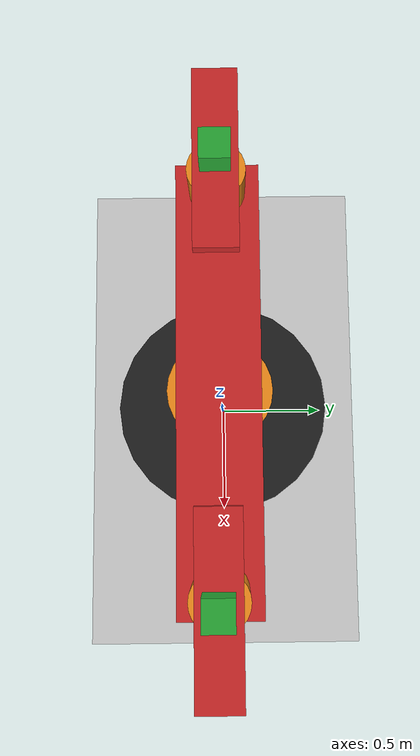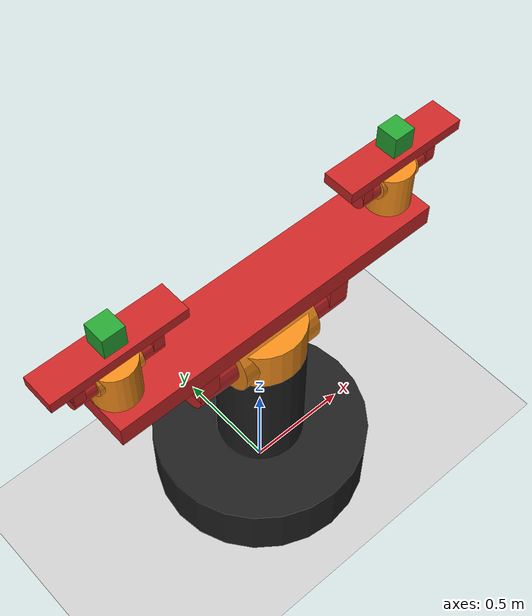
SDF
<sdf version="1.6">
 <world name="default">
  <model name="ground_plane">
   <static>1</static>
   <link name="link">
    <collision name="collision">
     <geometry><plane><normal>0 0 1</normal><size>100 100</size></plane></geometry>
     <surface>
      <contact><collide_bitmask>65535</collide_bitmask></contact>
      <friction><ode><mu>100</mu><mu2>50</mu2></ode></friction>
     </surface>
    </collision>
    <visual name="visual">
     <cast_shadows>0</cast_shadows>
     <geometry><plane><normal>0 0 1</normal><size>100 100</size></plane></geometry>
     <material>
      <script><uri>file://media/materials/scripts/gazebo.material</uri><name>Gazebo/Grey</name></script>
     </material>
    </visual>
   </link>
  </model>
  <light name="sun" type="directional">
   <pose>0 0 10 0 -0 0</pose>
   <diffuse>0.8 0.8 0.8 1</diffuse>
   <specular>0.2 0.2 0.2 1</specular>
   <attenuation>
    <range>1000</range>
    <constant>0.9</constant>
    <linear>0.01</linear>
    <quadratic>0.001</quadratic>
   </attenuation>
   <direction>-0.5 0.1 -0.9</direction>
  </light>
  <gravity>0 0 -9.8</gravity>
  <magnetic_field>6e-06 2.3e-05 -4.2e-05</magnetic_field>
  <atmosphere type="adiabatic"/>
  <physics name="default_physics" default="0" type="ode">
   <max_step_size>0.001</max_step_size>
   <real_time_factor>1</real_time_factor>
   <real_time_update_rate>1000</real_time_update_rate>
  </physics>
  <scene><ambient>0.4 0.4 0.4 1</ambient><background>0.7 0.7 0.7 1</background><shadows>1</shadows></scene>
  <spherical_coordinates>
   <surface_model>EARTH_WGS84</surface_model>
   <latitude_deg>0</latitude_deg>
   <longitude_deg>0</longitude_deg>
   <elevation>0</elevation>
   <heading_deg>0</heading_deg>
  </spherical_coordinates>
  <model name="binocular">
   <link name="link_base">
    <inertial>
     <pose>0 0 0.15 0 -0 0</pose>
     <mass>5</mass>
     <inertia><ixx>0.35</ixx><ixy>0</ixy><ixz>0</ixz><iyy>0.35</iyy><iyz>0</iyz><izz>0.625</izz></inertia>
    </inertial>
    <collision name="link_base_collision">
     <pose>0 0 0.15 0 -0 0</pose>
     <geometry><cylinder><length>0.3</length><radius>0.5</radius></cylinder></geometry>
    </collision>
    <collision name="link_base_collision_1">
     <pose>0 0 0.6 0 -0 0</pose>
     <geometry><cylinder><length>0.6</length><radius>0.2</radius></cylinder></geometry>
    </collision>
    <visual name="link_base_visual">
     <pose>0 0 0.15 0 -0 0</pose>
     <geometry><cylinder><length>0.3</length><radius>0.5</radius></cylinder></geometry>
     <material>
      <script><name>Gazebo/Black</name><uri>file://media/materials/scripts/gazebo.material</uri></script>
     </material>
    </visual>
    <visual name="link_base_visual_1">
     <pose>0 0 0.6 0 -0 0</pose>
     <geometry><cylinder><length>0.6</length><radius>0.2</radius></cylinder></geometry>
     <material>
      <script><name>Gazebo/Black</name><uri>file://media/materials/scripts/gazebo.material</uri></script>
     </material>
    </visual>
   </link>
   <joint name="fixed" type="fixed"><child>link_base</child><parent>world</parent></joint>
   <link name="link_servo0">
    <pose>0 0 0.9 0 -0 0</pose>
    <inertial>
     <pose>0 0 0.1 0 -0 0</pose>
     <mass>1</mass>
     <inertia><ixx>0.15</ixx><ixy>0</ixy><ixz>0</ixz><iyy>0.1</iyy><iyz>0</iyz><izz>0.2</izz></inertia>
    </inertial>
    <collision name="link_servo0_collision">
     <pose>0 0 0.1 0 -0 0</pose>
     <geometry><cylinder><length>0.6</length><radius>0.2</radius></cylinder></geometry>
     <surface><friction><ode><mu>0.2</mu><mu2>0.2</mu2></ode></friction></surface>
    </collision>
    <collision name="link_servo0_collision_1">
     <pose>0 0 0.1 3.14159 1.57079 3.14159</pose>
     <geometry><cylinder><length>0.4</length><radius>0.15</radius></cylinder></geometry>
     <surface><friction><ode><mu>0.2</mu><mu2>0.2</mu2></ode></friction></surface>
    </collision>
    <visual name="link_servo0_visual">
     <pose>0 0 0.1 0 -0 0</pose>
     <geometry><cylinder><length>0.2</length><radius>0.2</radius></cylinder></geometry>
     <material>
      <script><name>Gazebo/Orange</name><uri>file://media/materials/scripts/gazebo.material</uri></script>
     </material>
    </visual>
    <visual name="link_servo0_visual_1">
     <pose>0 0 0.1 3.14159 1.57079 3.14159</pose>
     <geometry><cylinder><length>0.4</length><radius>0.15</radius></cylinder></geometry>
     <material>
      <script><name>Gazebo/Orange</name><uri>file://media/materials/scripts/gazebo.material</uri></script>
     </material>
    </visual>
   </link>
   <joint name="theta1" type="revolute">
    <child>link_servo0</child>
    <parent>link_base</parent>
    <axis>
     <xyz>0 0 1</xyz>
     <limit><lower>0</lower><upper>0</upper><effort>1000</effort><velocity>0.5</velocity></limit>
     <dynamics>
      <damping>0.5</damping>
      <friction>0</friction>
      <spring_reference>0</spring_reference>
      <spring_stiffness>0</spring_stiffness>
     </dynamics>
     <use_parent_model_frame>1</use_parent_model_frame>
    </axis>
   </joint>
   <link name="link_servo1_baselineboard">
    <pose>0 0 1 -1.5708 -0 -1.5708</pose>
    <inertial>
     <mass>1.66667</mass>
     <inertia><ixx>0.1</ixx><ixy>0</ixy><ixz>0</ixz><iyy>-0.1</iyy><iyz>0</iyz><izz>0.2</izz></inertia>
    </inertial>
    <collision name="link_servo1_baselineboard_collision">
     <pose>0 0 0.3 0 -0 0</pose>
     <geometry><cylinder><length>0.2</length><radius>0.1</radius></cylinder></geometry>
     <surface><friction><ode><mu>0.2</mu><mu2>0.2</mu2></ode></friction></surface>
    </collision>
    <collision name="link_servo1_baselineboard_collision_1">
     <pose>0 0 -0.3 0 -0 0</pose>
     <geometry><cylinder><length>0.2</length><radius>0.1</radius></cylinder></geometry>
     <surface><friction><ode><mu>0.2</mu><mu2>0.2</mu2></ode></friction></surface>
    </collision>
    <collision name="link_servo1_baselineboard_collision_2">
     <pose>0 -0.1 0.35 0 -0 0</pose>
     <geometry><box><size>0.2 0.2 0.1</size></box></geometry>
     <surface><friction><ode><mu>0.2</mu><mu2>0.2</mu2></ode></friction></surface>
    </collision>
    <collision name="link_servo1_baselineboard_collision_3">
     <pose>0 -0.1 -0.35 0 -0 0</pose>
     <geometry><box><size>0.2 0.2 0.1</size></box></geometry>
     <surface><friction><ode><mu>0.2</mu><mu2>0.2</mu2></ode></friction></surface>
    </collision>
    <collision name="link_servo1_baselineboard_collision_4">
     <pose>0 -0.25 0 0 -0 0</pose>
     <geometry><box><size>0.3 0.1 1.6</size></box></geometry>
     <surface><friction><ode><mu>0.2</mu><mu2>0.2</mu2></ode></friction></surface>
    </collision>
    <visual name="link_servo1_baselineboard_visual">
     <pose>0 0 0.3 0 -0 0</pose>
     <geometry><cylinder><length>0.2</length><radius>0.1</radius></cylinder></geometry>
     <material>
      <script><name>Gazebo/Red</name><uri>file://media/materials/scripts/gazebo.material</uri></script>
     </material>
    </visual>
    <visual name="link_servo1_baselineboard_visual_1">
     <pose>0 0 -0.3 0 -0 0</pose>
     <geometry><cylinder><length>0.2</length><radius>0.1</radius></cylinder></geometry>
     <material>
      <script><name>Gazebo/Red</name><uri>file://media/materials/scripts/gazebo.material</uri></script>
     </material>
    </visual>
    <visual name="link_servo1_baselineboard_visual_2">
     <pose>0 -0.1 0.35 0 -0 0</pose>
     <geometry><box><size>0.2 0.2 0.1</size></box></geometry>
     <material>
      <script><name>Gazebo/Red</name><uri>file://media/materials/scripts/gazebo.material</uri></script>
     </material>
    </visual>
    <visual name="link_servo1_baselineboard_visual_3">
     <pose>0 -0.1 -0.35 0 -0 0</pose>
     <geometry><box><size>0.2 0.2 0.1</size></box></geometry>
     <material>
      <script><name>Gazebo/Red</name><uri>file://media/materials/scripts/gazebo.material</uri></script>
     </material>
    </visual>
    <visual name="link_servo1_baselineboard_visual_4">
     <pose>0 -0.25 0 0 -0 0</pose>
     <geometry><box><size>0.3 0.1 1.6</size></box></geometry>
     <material>
      <script><name>Gazebo/Red</name><uri>file://media/materials/scripts/gazebo.material</uri></script>
     </material>
    </visual>
   </link>
   <joint name="theta2" type="revolute">
    <child>link_servo1_baselineboard</child>
    <parent>link_servo0</parent>
    <axis>
     <xyz>1 0 0</xyz>
     <limit><lower>0</lower><upper>0</upper><effort>1000</effort><velocity>0.5</velocity></limit>
     <dynamics>
      <damping>0.5</damping>
      <friction>0</friction>
      <spring_reference>0</spring_reference>
      <spring_stiffness>0</spring_stiffness>
     </dynamics>
     <use_parent_model_frame>1</use_parent_model_frame>
    </axis>
   </joint>
   <link name="link_servo2">
    <pose>-0.7 -0 1 0 -0 1.5708</pose>
    <inertial>
     <pose>0 0 0.4 0 -0 0</pose>
     <mass>1</mass>
     <inertia><ixx>0.01</ixx><ixy>0</ixy><ixz>0</ixz><iyy>0.01</iyy><iyz>0</iyz><izz>0.01</izz></inertia>
    </inertial>
    <collision name="link_servo2_collision">
     <pose>0 0 0.4 0 -0 0</pose>
     <geometry><cylinder><length>0.2</length><radius>0.1</radius></cylinder></geometry>
     <surface><friction><ode><mu>0.2</mu><mu2>0.2</mu2></ode></friction></surface>
    </collision>
    <collision name="link_servo2_collision_1">
     <pose>0 0 0.45 1.57078 -1.57079 -3.14158</pose>
     <geometry><cylinder><length>0.2</length><radius>0.0625</radius></cylinder></geometry>
     <surface><friction><ode><mu>0.2</mu><mu2>0.2</mu2></ode></friction></surface>
    </collision>
    <visual name="link_servo2_visual">
     <pose>0 0 0.4 0 -0 0</pose>
     <geometry><cylinder><length>0.2</length><radius>0.1</radius></cylinder></geometry>
     <material>
      <script><name>Gazebo/Orange</name><uri>file://media/materials/scripts/gazebo.material</uri></script>
     </material>
    </visual>
    <visual name="link_servo2_visual_1">
     <pose>0 0 0.45 1.57078 -1.57079 -3.14158</pose>
     <geometry><cylinder><length>0.2</length><radius>0.0625</radius></cylinder></geometry>
     <material>
      <script><name>Gazebo/Orange</name><uri>file://media/materials/scripts/gazebo.material</uri></script>
     </material>
    </visual>
   </link>
   <joint name="theta3" type="revolute">
    <child>link_servo2</child>
    <parent>link_servo1_baselineboard</parent>
    <axis>
     <xyz>0 0 1</xyz>
     <limit><lower>-1e+16</lower><upper>1e+16</upper></limit>
     <dynamics>
      <damping>0.5</damping>
      <friction>0</friction>
      <spring_reference>0</spring_reference>
      <spring_stiffness>0</spring_stiffness>
     </dynamics>
     <use_parent_model_frame>1</use_parent_model_frame>
    </axis>
   </joint>
   <link name="link_servo3">
    <pose>-0.7 -0 1.45 -1.5708 -0 -1.5708</pose>
    <inertial>
     <pose>0 -4e-06 0 0 -0 0</pose>
     <mass>0.50001</mass>
     <inertia>
      <ixx>0.0100014</ixx>
      <ixy>0</ixy>
      <ixz>0</ixz>
      <iyy>-0.009999</iyy>
      <iyz>0</iyz>
      <izz>0.0200014</izz>
     </inertia>
    </inertial>
    <collision name="link_servo3_collision">
     <pose>0 0 0.15 0 -0 0</pose>
     <geometry><cylinder><length>0.1</length><radius>0.05</radius></cylinder></geometry>
     <surface><friction><ode><mu>0.2</mu><mu2>0.2</mu2></ode></friction></surface>
    </collision>
    <collision name="link_servo3_collision_1">
     <pose>0 0 -0.15 0 -0 0</pose>
     <geometry><cylinder><length>0.1</length><radius>0.05</radius></cylinder></geometry>
     <surface><friction><ode><mu>0.2</mu><mu2>0.2</mu2></ode></friction></surface>
    </collision>
    <collision name="link_servo3_collision_2">
     <pose>0 -0.05 0.175 0 -0 0</pose>
     <geometry><box><size>0.1 0.1 0.05</size></box></geometry>
     <surface><friction><ode><mu>0.2</mu><mu2>0.2</mu2></ode></friction></surface>
    </collision>
    <collision name="link_servo3_collision_3">
     <pose>0 -0.05 -0.175 0 -0 0</pose>
     <geometry><box><size>0.1 0.1 0.05</size></box></geometry>
     <surface><friction><ode><mu>0.2</mu><mu2>0.2</mu2></ode></friction></surface>
    </collision>
    <collision name="link_servo3_collision_4">
     <pose>0 -0.125 0 0 -0 0</pose>
     <geometry><box><size>0.15 0.05 0.6</size></box></geometry>
     <surface><friction><ode><mu>0.2</mu><mu2>0.2</mu2></ode></friction></surface>
    </collision>
    <collision name="link_servo3_fixed_joint_lump__left_camera_collision_5">
     <pose>0 -0.2 0 -1.5708 -0 -3.14159</pose>
     <geometry><box><size>0.1 0.1 0.1</size></box></geometry>
     <surface><friction><ode><mu>0.2</mu><mu2>0.2</mu2></ode></friction></surface>
    </collision>
    <visual name="link_servo3_visual">
     <pose>0 0 0.15 0 -0 0</pose>
     <geometry><cylinder><length>0.1</length><radius>0.05</radius></cylinder></geometry>
     <material>
      <script><name>Gazebo/Red</name><uri>file://media/materials/scripts/gazebo.material</uri></script>
     </material>
    </visual>
    <visual name="link_servo3_visual_1">
     <pose>0 0 -0.15 0 -0 0</pose>
     <geometry><cylinder><length>0.1</length><radius>0.05</radius></cylinder></geometry>
     <material>
      <script><name>Gazebo/Red</name><uri>file://media/materials/scripts/gazebo.material</uri></script>
     </material>
    </visual>
    <visual name="link_servo3_visual_2">
     <pose>0 -0.05 0.175 0 -0 0</pose>
     <geometry><box><size>0.1 0.1 0.05</size></box></geometry>
     <material>
      <script><name>Gazebo/Red</name><uri>file://media/materials/scripts/gazebo.material</uri></script>
     </material>
    </visual>
    <visual name="link_servo3_visual_3">
     <pose>0 -0.05 -0.175 0 -0 0</pose>
     <geometry><box><size>0.1 0.1 0.05</size></box></geometry>
     <material>
      <script><name>Gazebo/Red</name><uri>file://media/materials/scripts/gazebo.material</uri></script>
     </material>
    </visual>
    <visual name="link_servo3_visual_4">
     <pose>0 -0.125 0 0 -0 0</pose>
     <geometry><box><size>0.15 0.05 0.6</size></box></geometry>
     <material>
      <script><name>Gazebo/Red</name><uri>file://media/materials/scripts/gazebo.material</uri></script>
     </material>
    </visual>
    <visual name="link_servo3_fixed_joint_lump__left_camera_visual_5">
     <pose>0 -0.2 0 -1.5708 -0 -3.14159</pose>
     <geometry><box><size>0.1 0.1 0.1</size></box></geometry>
     <material>
      <script><name>Gazebo/Green</name><uri>file://media/materials/scripts/gazebo.material</uri></script>
     </material>
    </visual>
    <sensor name="cameraL" type="camera">
     <update_rate>30</update_rate>
     <camera name="leftcmr">
      <horizontal_fov>1.39626</horizontal_fov>
      <image><width>800</width><height>480</height><format>R8G8B8</format></image>
      <clip><near>0.02</near><far>300</far></clip>
      <noise><type>gaussian</type><mean>0</mean><stddev>0.007</stddev></noise>
     </camera>
     <plugin name="camera_controller" filename="libgazebo_ros_camera.so">
      <alwaysOn>true</alwaysOn>
      <updateRate>0.0</updateRate>
      <cameraName>binocular/lefteye</cameraName>
      <imageTopicName>image_raw</imageTopicName>
      <cameraInfoTopicName>camera_info</cameraInfoTopicName>
      <frameName>camera_link_optical</frameName>
      <hackBaseline>0.0</hackBaseline>
      <distortionK1>0.0</distortionK1>
      <distortionK2>0.0</distortionK2>
      <distortionK3>0.0</distortionK3>
      <distortionT1>0.0</distortionT1>
      <distortionT2>0.0</distortionT2>
      <CxPrime>0</CxPrime>
      <Cx>0.0</Cx>
      <Cy>0.0</Cy>
      <focalLength>0.0</focalLength>
      <robotNamespace>/</robotNamespace>
     </plugin>
     <pose>0 -0.2 0 -1.5708 -0 -3.14159</pose>
    </sensor>
   </link>
   <joint name="theta4" type="revolute">
    <child>link_servo3</child>
    <parent>link_servo2</parent>
    <axis>
     <xyz>1 0 0</xyz>
     <limit><lower>0</lower><upper>0</upper><effort>1000</effort><velocity>0.5</velocity></limit>
     <dynamics>
      <damping>0.5</damping>
      <friction>0</friction>
      <spring_reference>0</spring_reference>
      <spring_stiffness>0</spring_stiffness>
     </dynamics>
     <use_parent_model_frame>1</use_parent_model_frame>
    </axis>
   </joint>
   <link name="link_servo4">
    <pose>0.7 0 1 0 -0 1.5708</pose>
    <inertial>
     <pose>0 0 0.4 0 -0 0</pose>
     <mass>1</mass>
     <inertia><ixx>0.01</ixx><ixy>0</ixy><ixz>0</ixz><iyy>0.01</iyy><iyz>0</iyz><izz>0.01</izz></inertia>
    </inertial>
    <collision name="link_servo4_collision">
     <pose>0 0 0.4 0 -0 0</pose>
     <geometry><cylinder><length>0.2</length><radius>0.1</radius></cylinder></geometry>
     <surface><friction><ode><mu>0.2</mu><mu2>0.2</mu2></ode></friction></surface>
    </collision>
    <collision name="link_servo4_collision_1">
     <pose>0 0 0.45 1.57078 -1.57079 -3.14158</pose>
     <geometry><cylinder><length>0.2</length><radius>0.0625</radius></cylinder></geometry>
     <surface><friction><ode><mu>0.2</mu><mu2>0.2</mu2></ode></friction></surface>
    </collision>
    <visual name="link_servo4_visual">
     <pose>0 0 0.4 0 -0 0</pose>
     <geometry><cylinder><length>0.2</length><radius>0.1</radius></cylinder></geometry>
     <material>
      <script><name>Gazebo/Orange</name><uri>file://media/materials/scripts/gazebo.material</uri></script>
     </material>
    </visual>
    <visual name="link_servo4_visual_1">
     <pose>0 0 0.45 1.57078 -1.57079 -3.14158</pose>
     <geometry><cylinder><length>0.2</length><radius>0.0625</radius></cylinder></geometry>
     <material>
      <script><name>Gazebo/Orange</name><uri>file://media/materials/scripts/gazebo.material</uri></script>
     </material>
    </visual>
   </link>
   <joint name="theta5" type="revolute">
    <child>link_servo4</child>
    <parent>link_servo1_baselineboard</parent>
    <axis>
     <xyz>0 0 1</xyz>
     <limit><lower>-1e+16</lower><upper>1e+16</upper></limit>
     <dynamics>
      <damping>0.5</damping>
      <friction>0</friction>
      <spring_reference>0</spring_reference>
      <spring_stiffness>0</spring_stiffness>
     </dynamics>
     <use_parent_model_frame>1</use_parent_model_frame>
    </axis>
   </joint>
   <link name="link_servo5">
    <pose>0.7 0 1.45 -1.5708 -0 -1.5708</pose>
    <inertial>
     <pose>0 -4e-06 0 0 -0 0</pose>
     <mass>0.50001</mass>
     <inertia>
      <ixx>0.0100014</ixx>
      <ixy>0</ixy>
      <ixz>0</ixz>
      <iyy>-0.009999</iyy>
      <iyz>0</iyz>
      <izz>0.0200014</izz>
     </inertia>
    </inertial>
    <collision name="link_servo5_collision">
     <pose>0 0 0.15 0 -0 0</pose>
     <geometry><cylinder><length>0.1</length><radius>0.05</radius></cylinder></geometry>
     <surface><friction><ode><mu>0.2</mu><mu2>0.2</mu2></ode></friction></surface>
    </collision>
    <collision name="link_servo5_collision_1">
     <pose>0 0 -0.15 0 -0 0</pose>
     <geometry><cylinder><length>0.1</length><radius>0.05</radius></cylinder></geometry>
     <surface><friction><ode><mu>0.2</mu><mu2>0.2</mu2></ode></friction></surface>
    </collision>
    <collision name="link_servo5_collision_2">
     <pose>0 -0.05 0.175 0 -0 0</pose>
     <geometry><box><size>0.1 0.1 0.05</size></box></geometry>
     <surface><friction><ode><mu>0.2</mu><mu2>0.2</mu2></ode></friction></surface>
    </collision>
    <collision name="link_servo5_collision_3">
     <pose>0 -0.05 -0.175 0 -0 0</pose>
     <geometry><box><size>0.1 0.1 0.05</size></box></geometry>
     <surface><friction><ode><mu>0.2</mu><mu2>0.2</mu2></ode></friction></surface>
    </collision>
    <collision name="link_servo5_collision_4">
     <pose>0 -0.125 0 0 -0 0</pose>
     <geometry><box><size>0.15 0.05 0.6</size></box></geometry>
     <surface><friction><ode><mu>0.2</mu><mu2>0.2</mu2></ode></friction></surface>
    </collision>
    <collision name="link_servo5_fixed_joint_lump__right_camera_collision_5">
     <pose>0 -0.2 0 -1.5708 -0 -3.14159</pose>
     <geometry><box><size>0.1 0.1 0.1</size></box></geometry>
     <surface><friction><ode><mu>0.2</mu><mu2>0.2</mu2></ode></friction></surface>
    </collision>
    <visual name="link_servo5_visual">
     <pose>0 0 0.15 0 -0 0</pose>
     <geometry><cylinder><length>0.1</length><radius>0.05</radius></cylinder></geometry>
     <material>
      <script><name>Gazebo/Red</name><uri>file://media/materials/scripts/gazebo.material</uri></script>
     </material>
    </visual>
    <visual name="link_servo5_visual_1">
     <pose>0 0 -0.15 0 -0 0</pose>
     <geometry><cylinder><length>0.1</length><radius>0.05</radius></cylinder></geometry>
     <material>
      <script><name>Gazebo/Red</name><uri>file://media/materials/scripts/gazebo.material</uri></script>
     </material>
    </visual>
    <visual name="link_servo5_visual_2">
     <pose>0 -0.05 0.175 0 -0 0</pose>
     <geometry><box><size>0.1 0.1 0.05</size></box></geometry>
     <material>
      <script><name>Gazebo/Red</name><uri>file://media/materials/scripts/gazebo.material</uri></script>
     </material>
    </visual>
    <visual name="link_servo5_visual_3">
     <pose>0 -0.05 -0.175 0 -0 0</pose>
     <geometry><box><size>0.1 0.1 0.05</size></box></geometry>
     <material>
      <script><name>Gazebo/Red</name><uri>file://media/materials/scripts/gazebo.material</uri></script>
     </material>
    </visual>
    <visual name="link_servo5_visual_4">
     <pose>0 -0.125 0 0 -0 0</pose>
     <geometry><box><size>0.15 0.05 0.6</size></box></geometry>
     <material>
      <script><name>Gazebo/Red</name><uri>file://media/materials/scripts/gazebo.material</uri></script>
     </material>
    </visual>
    <visual name="link_servo5_fixed_joint_lump__right_camera_visual_5">
     <pose>0 -0.2 0 -1.5708 -0 -3.14159</pose>
     <geometry><box><size>0.1 0.1 0.1</size></box></geometry>
     <material>
      <script><name>Gazebo/Green</name><uri>file://media/materials/scripts/gazebo.material</uri></script>
     </material>
    </visual>
    <sensor name="cameraR" type="camera">
     <update_rate>30</update_rate>
     <camera name="Rightcmr">
      <horizontal_fov>1.39626</horizontal_fov>
      <image><width>800</width><height>480</height><format>R8G8B8</format></image>
      <clip><near>0.02</near><far>300</far></clip>
      <noise><type>gaussian</type><mean>0</mean><stddev>0.007</stddev></noise>
     </camera>
     <plugin name="camera_controller" filename="libgazebo_ros_camera.so">
      <alwaysOn>true</alwaysOn>
      <updateRate>0.0</updateRate>
      <cameraName>binocular/righteye</cameraName>
      <imageTopicName>image_raw</imageTopicName>
      <cameraInfoTopicName>camera_info</cameraInfoTopicName>
      <frameName>camera_link_optical</frameName>
      <hackBaseline>0.0</hackBaseline>
      <distortionK1>0.0</distortionK1>
      <distortionK2>0.0</distortionK2>
      <distortionK3>0.0</distortionK3>
      <distortionT1>0.0</distortionT1>
      <distortionT2>0.0</distortionT2>
      <CxPrime>0</CxPrime>
      <Cx>0.0</Cx>
      <Cy>0.0</Cy>
      <focalLength>0.0</focalLength>
      <robotNamespace>/</robotNamespace>
     </plugin>
     <pose>0 -0.2 0 -1.5708 -0 -3.14159</pose>
    </sensor>
   </link>
   <joint name="theta6" type="revolute">
    <child>link_servo5</child>
    <parent>link_servo4</parent>
    <axis>
     <xyz>1 0 0</xyz>
     <limit><lower>0</lower><upper>0</upper><effort>1000</effort><velocity>0.5</velocity></limit>
     <dynamics>
      <damping>0.5</damping>
      <friction>0</friction>
      <spring_reference>0</spring_reference>
      <spring_stiffness>0</spring_stiffness>
     </dynamics>
     <use_parent_model_frame>1</use_parent_model_frame>
    </axis>
   </joint>
   <static>0</static>
   <plugin name="gazebo_ros_control" filename="libgazebo_ros_control.so">
    <robotNamespace>/binocular</robotNamespace>
    <robotSimType>gazebo_ros_control/DefaultRobotHWSim</robotSimType>
   </plugin>
  </model>
  <light name="user_spot_light_0" type="spot">
   <pose>-0.417739 2.09239 1 0 -0 0</pose>
   <diffuse>0.5 0.5 0.5 1</diffuse>
   <specular>0.1 0.1 0.1 1</specular>
   <direction>0 0 -1</direction>
   <attenuation>
    <range>20</range>
    <constant>0.5</constant>
    <linear>0.01</linear>
    <quadratic>0.001</quadratic>
   </attenuation>
   <cast_shadows>0</cast_shadows>
   <spot><inner_angle>0.6</inner_angle><outer_angle>1</outer_angle><falloff>1</falloff></spot>
  </light>
  <light name="user_point_light_0" type="point">
   <pose>-0.222283 -1.9325 1 0 -0 0</pose>
   <diffuse>0.5 0.5 0.5 1</diffuse>
   <specular>0.1 0.1 0.1 1</specular>
   <attenuation>
    <range>20</range>
    <constant>0.5</constant>
    <linear>0.01</linear>
    <quadratic>0.001</quadratic>
   </attenuation>
   <cast_shadows>0</cast_shadows>
   <direction>0 0 -1</direction>
  </light>
 </world>
</sdf>
